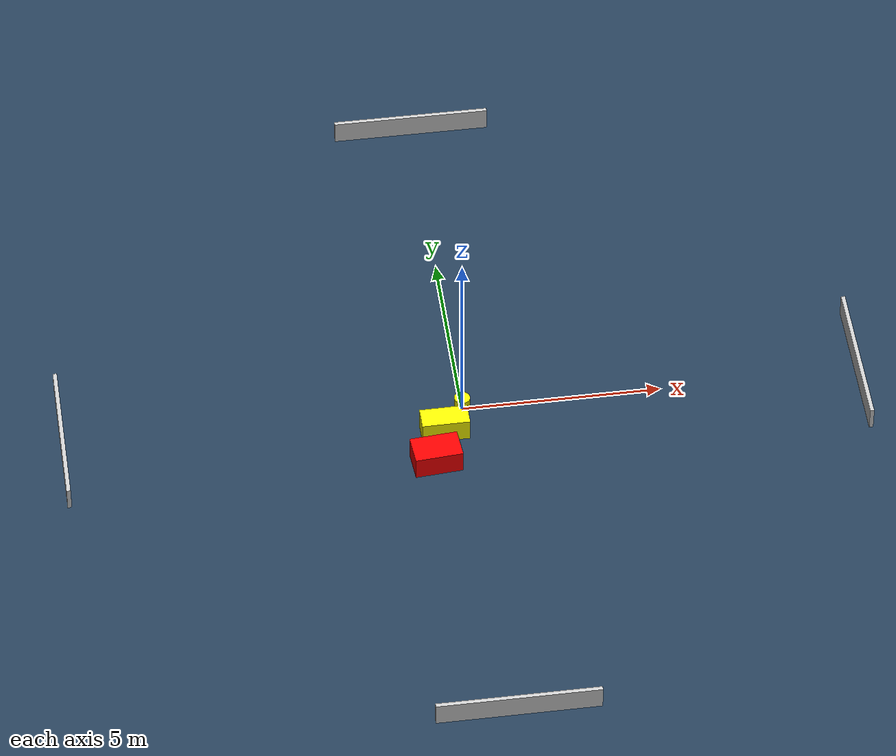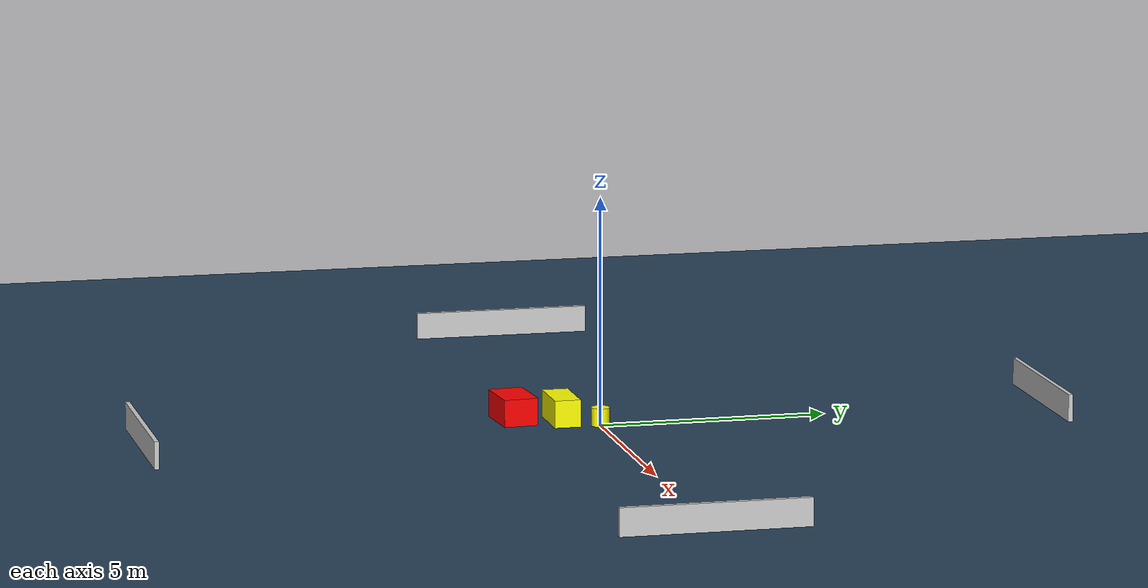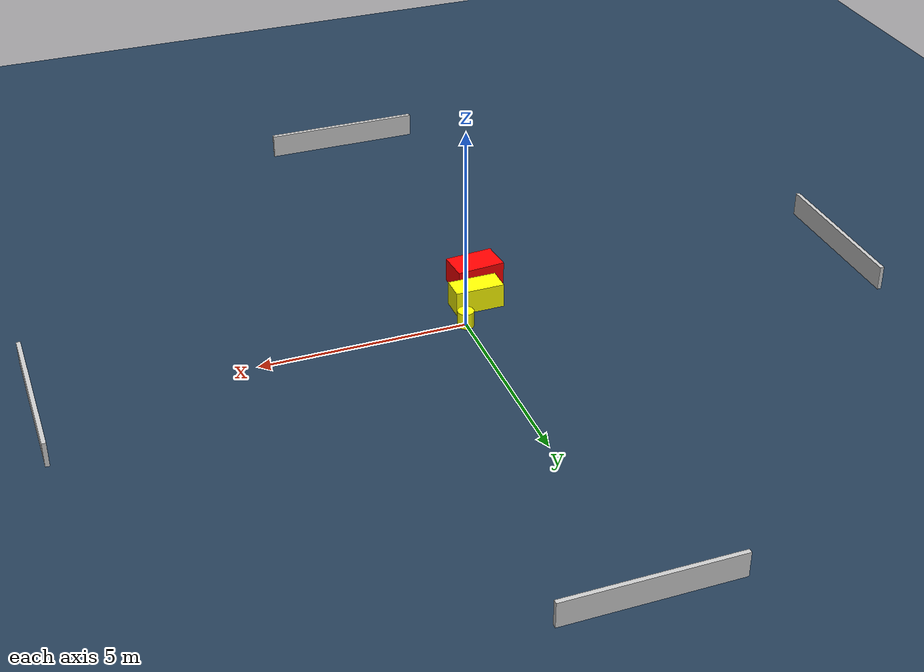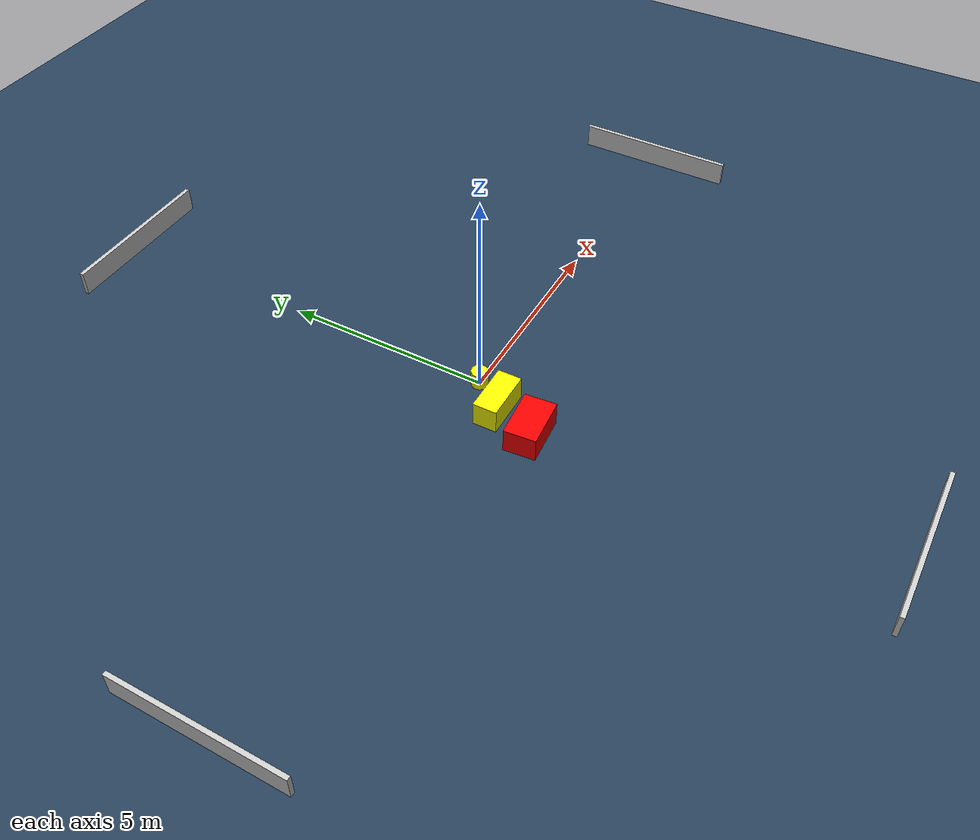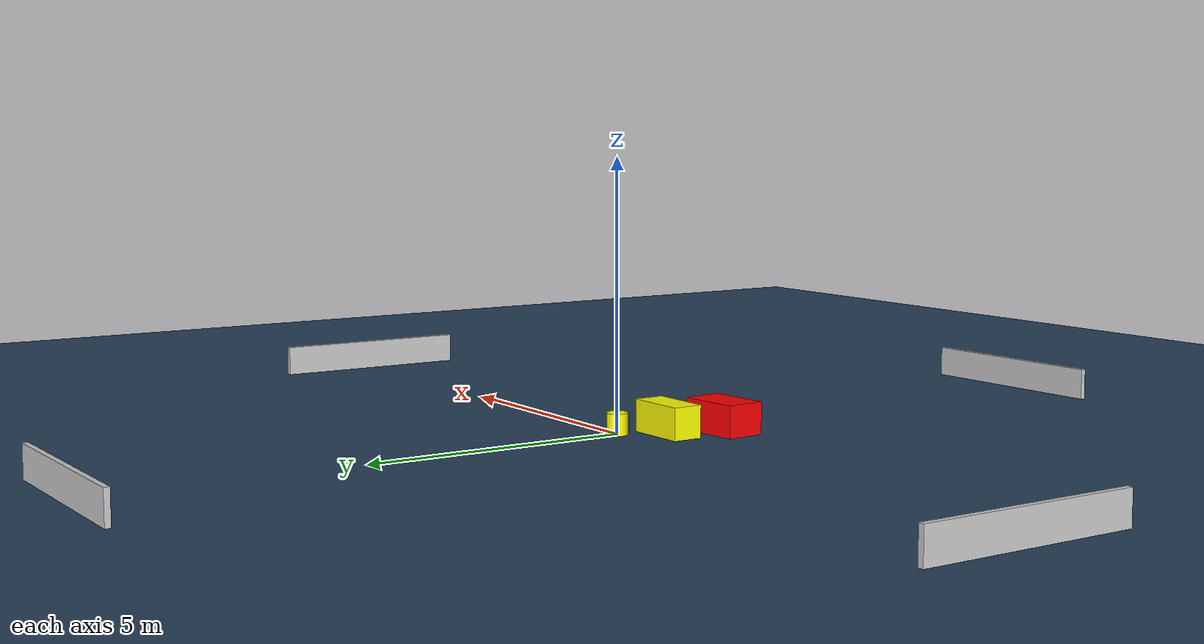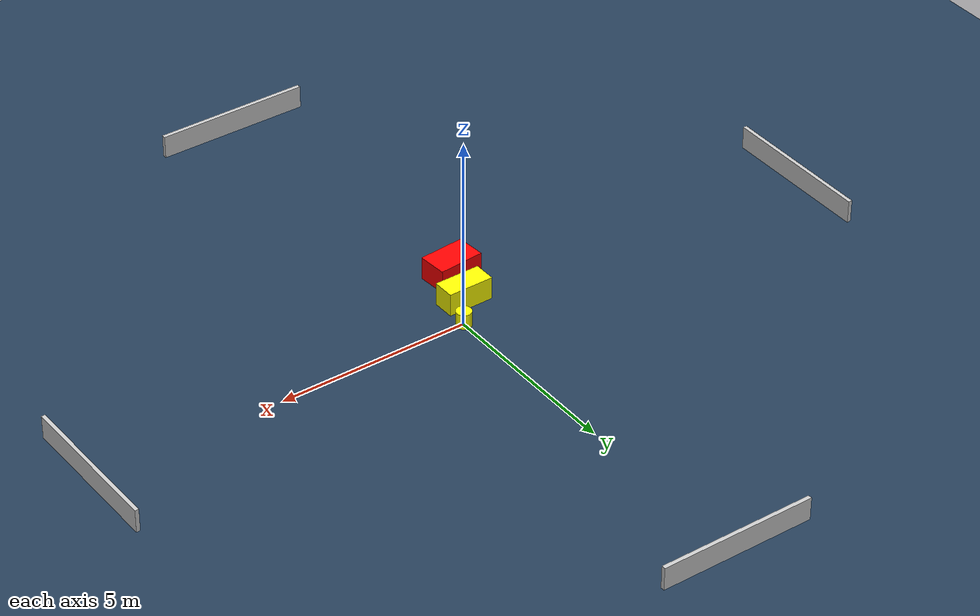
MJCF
<?xml version="1.0" ?>
<mujoco model="generated_environment">
  <option timestep="0.01" integrator="RK4" cone="elliptic"/>
  <default>
    <geom density="1"/>
  </default>
  <asset>
    <texture builtin="gradient" height="3072" name="skybox" rgb1="0.3 0.5 0.7" rgb2="0 0 0" type="skybox" width="512"/>
    <texture builtin="checker" height="300" name="groundplane" rgb1="0.2 0.3 0.4" rgb2="0.1 0.2 0.3" type="2d" width="300"/>
    <material name="groundplane" reflectance="0.2" texrepeat="5 5" texture="groundplane"/>
  </asset>
  <worldbody>
    <light dir="0 0 -1" directional="true" pos="0 0 1.5"/>
    <geom condim="3" friction="0.5 0.005 0.001" material="groundplane" name="floor" pos="0 0 0" size="0 0 0.05" type="plane"/>
    <body name="walls">
      <geom name="wall_1" condim="4" pos="-10.0 0.0 0.3" rgba="0.800000011920929 0.800000011920929 0.800000011920929 1.0" size="0.05 2.0 0.3" type="box"/>
      <geom name="wall_2" condim="4" pos="10.0 0.0 0.3" rgba="0.800000011920929 0.800000011920929 0.800000011920929 1.0" size="0.05 2.0 0.3" type="box"/>
      <geom name="wall_3" condim="4" pos="0.0 -10.0 0.3" rgba="0.800000011920929 0.800000011920929 0.800000011920929 1.0" size="2.0 0.05 0.3" type="box"/>
      <geom name="wall_4" condim="4" pos="0.0 10.0 0.3" rgba="0.800000011920929 0.800000011920929 0.800000011920929 1.0" size="2.0 0.05 0.3" type="box"/>
    </body>
    <body name="robot">
      <joint name="joint_x" type="slide" pos="0 0 0" axis="1 0 0"/>
      <joint name="joint_y" type="slide" pos="0 0 0" axis="0 1 0"/>
      <geom name="robot" type="cylinder" pos="0.0 0.0 0.2" size="0.2 0.2 0.0" mass="5.0" friction="1.0 0.005 0.0001" condim="4" rgba="1.0 1.0 0.0 1.0"/>
    </body>
    <body name="obstacle_1_movable">
      <geom name="obstacle_1_movable" condim="4" pos="-0.536780466273032 -0.7449655962376245 0.3" euler="0 0 180.50256157709393" friction="0.0 0.005 0.001" rgba="1.0 1.0 0.0 1.0" size="0.6000931912085526 0.2870456694253726 0.3" type="box" mass="0.1"/>
      <joint type="free"/>
    </body>
    <body name="obstacle_2_static">
      <geom name="obstacle_2_static" condim="4" pos="-0.8787657864949806 -1.7366598051229536 0.3" euler="0 0 94.63205954333016" friction="0.0 0.005 0.001" rgba="1.0 0.0 0.0 1.0" size="0.3786066105103716 0.5982276318126396 0.3" type="box"/>
    </body>
  </worldbody>
  <actuator>
    <motor name="actuator_x" joint="joint_x" gear="1" ctrlrange="-1 1"/>
    <motor name="actuator_y" joint="joint_y" gear="1" ctrlrange="-1 1"/>
  </actuator>
</mujoco>
